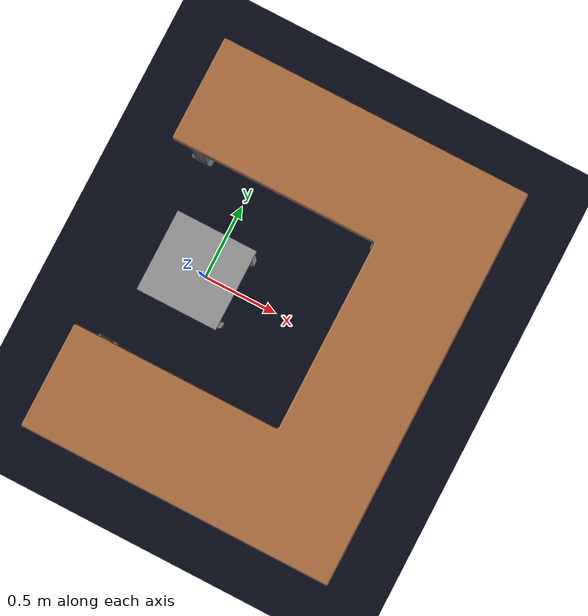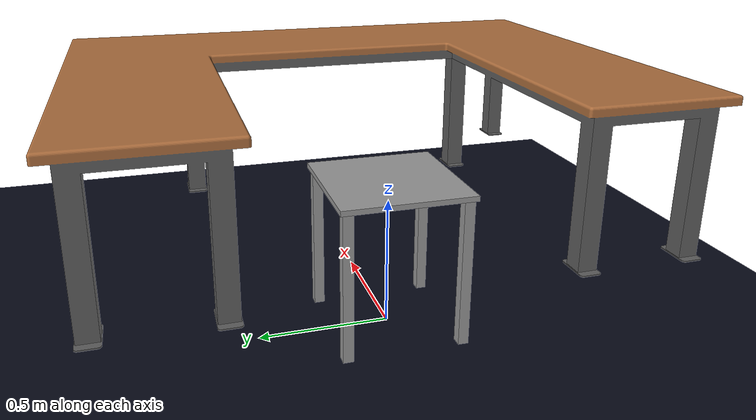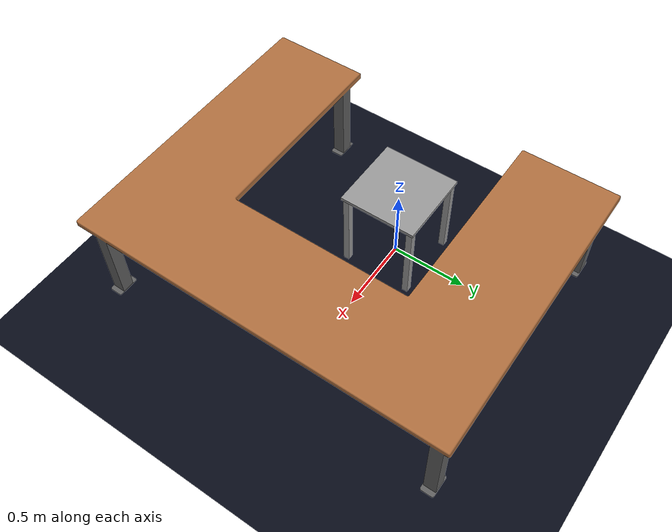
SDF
<sdf version='1.9'>
  <world name='default'>
    <physics name="1ms" type="ode">
      <max_step_size>0.003</max_step_size>
      <real_time_update_rate>1000.0</real_time_update_rate>
      <real_time_factor>1.0</real_time_factor>
    </physics>
    <plugin name='gz::sim::systems::Physics' filename='gz-sim-physics-system'/>
    <plugin name='gz::sim::systems::UserCommands' filename='gz-sim-user-commands-system'/>
    <plugin name='gz::sim::systems::SceneBroadcaster' filename='gz-sim-scene-broadcaster-system'/>
    <plugin name='gz::sim::systems::Contact' filename='gz-sim-contact-system'/>
    <gravity>0 0 -9.8</gravity>
    <magnetic_field>6e-06 2.3e-05 -4.2e-05</magnetic_field>
    <atmosphere type='adiabatic'/>
    <scene>
      <ambient>0.4 0.4 0.4 1</ambient>
      <background>0.7 0.7 0.7 1</background>
      <shadows>true</shadows>
    </scene>
    <audio>
      <device>default</device>
    </audio>
    <model name='ground_plane'>
      <static>true</static>
      <link name='link'>
        <collision name='collision'>
          <geometry>
            <plane>
              <normal>0 0 1</normal>
              <size>100 100</size>
            </plane>
          </geometry>
          <surface>
            <friction>
              <ode/>
            </friction>
            <bounce/>
            <contact/>
          </surface>
        </collision>
        <visual name='visual'>
          <geometry>
            <plane>
              <normal>0 0 1</normal>
              <size>100 100</size>
            </plane>
          </geometry>
          <material>
              <ambient>0.031 0.043 0.1 1</ambient>
              <diffuse>0.031 0.043 0.1 1</diffuse>
              <specular>0.031 0.043 0.1 1</specular>
          </material>
        </visual>
        <pose>0 0 0 0 -0 0</pose>
        <inertial>
          <pose>0 0 0 0 -0 0</pose>
          <mass>1</mass>
          <inertia>
            <ixx>1</ixx>
            <ixy>0</ixy>
            <ixz>0</ixz>
            <iyy>1</iyy>
            <iyz>0</iyz>
            <izz>1</izz>
          </inertia>
        </inertial>
        <enable_wind>false</enable_wind>
      </link>
      <pose>0 0 0 0 -0 0</pose>
      <self_collide>false</self_collide>
    </model>

    <model name='mesa_base'>
      <include>
            <uri>model://ur5_base</uri>
      </include>
      <pose>-0.0 -0.0 -0.000817 0 -0 0</pose>
      <static>true</static>
    </model>

    <model name='mesa_bidones'>
      <include>
            <uri>model://surgery_table</uri>
      </include>
      <pose>0.5 0.0 0.289901 0 -0 0</pose>
    </model>

    <light name='sun' type='directional'>
      <pose>0 0 10 0 -0 0</pose>
      <cast_shadows>true</cast_shadows>
      <intensity>1.5</intensity>
      <direction>-0.5 0.5 -1</direction>
      <diffuse>0.8 0.8 0.8 1</diffuse>
      <specular>0.2 0.2 0.2 1</specular>
      <attenuation>
        <range>1000</range>
        <linear>0.01</linear>
        <constant>0.90000000000000002</constant>
        <quadratic>0.001</quadratic>
      </attenuation>
      <spot>
        <inner_angle>0</inner_angle>
        <outer_angle>0</outer_angle>
        <falloff>0</falloff>
      </spot>
    </light>
  </world>
</sdf>

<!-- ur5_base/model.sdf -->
<sdf version="1.6">
  <model name="ur5_base">
    <static>true</static>

    <link name="top_plate">
      <pose>0 0 0.58 0 0 0</pose>
      <collision name="top_plate_collision">
        <geometry>
          <box>
            <size>0.5 0.5 0.02</size>
          </box>
        </geometry>
        <surface>
          <contact>
            <collide_bitmask>0x01</collide_bitmask>
          </contact>
        </surface>
      </collision>
      <visual name="top_plate_visual">
        <geometry>
          <box>
            <size>0.5 0.5 0.02</size>
          </box>
        </geometry>
        <material>
          <script>
            <uri>file://media/materials/scripts/gazebo.material</uri>
            <name>Gazebo/Grey</name>
          </script>
        </material>
      </visual>
    </link>
    <link name="leg1">
      <pose>0.22 0.22 0.285 0 0 0</pose>
      <collision name="leg1_collision">
        <geometry>
          <box>
            <size>0.04 0.04 0.57</size>
          </box>
        </geometry>
      </collision>
      <visual name="leg1_visual">
        <geometry>
          <box>
            <size>0.04 0.04 0.57</size>
          </box>
        </geometry>
        <material>
          <script>
            <uri>file://media/materials/scripts/gazebo.material</uri>
            <name>Gazebo/Grey</name>
          </script>
        </material>
      </visual>
    </link>
    <link name="leg2">
      <pose>-0.22 0.22 0.285 0 0 0</pose>
      <collision name="leg2_collision">
        <geometry>
          <box>
            <size>0.04 0.04 0.57</size>
          </box>
        </geometry>
      </collision>
      <visual name="leg2_visual">
        <geometry>
          <box>
            <size>0.04 0.04 0.57</size>
          </box>
        </geometry>
        <material>
          <script>
            <uri>file://media/materials/scripts/gazebo.material</uri>
            <name>Gazebo/Grey</name>
          </script>
        </material>
      </visual>
    </link>
    <link name="leg3">
      <pose>0.22 -0.22 0.285 0 0 0</pose>
      <collision name="leg3_collision">
        <geometry>
          <box>
            <size>0.04 0.04 0.57</size>
          </box>
        </geometry>
      </collision>
      <visual name="leg3_visual">
        <geometry>
          <box>
            <size>0.04 0.04 0.57</size>
          </box>
        </geometry>
        <material>
          <script>
            <uri>file://media/materials/scripts/gazebo.material</uri>
            <name>Gazebo/Grey</name>
          </script>
        </material>
      </visual>
    </link>
    <link name="leg4">
      <pose>-0.22 -0.22 0.285 0 0 0</pose>
      <collision name="leg4_collision">
        <geometry>
          <box>
            <size>0.04 0.04 0.57</size>
          </box>
        </geometry>
      </collision>
      <visual name="leg4_visual">
        <geometry>
          <box>
            <size>0.04 0.04 0.57</size>
          </box>
        </geometry>
        <material>
          <script>
            <uri>file://media/materials/scripts/gazebo.material</uri>
            <name>Gazebo/Grey</name>
          </script>
        </material>
      </visual>
    </link>
  </model>
</sdf>

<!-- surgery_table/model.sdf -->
<sdf version="1.5">
  <model name="surgery_table">
    <static>true</static>
    <link name="link">
      <inertial>
        <mass>2</mass>
        <pose frame=''>0 0 0 0 0 0</pose>
        <inertia>
          <ixx>0.1</ixx>
          <ixy>0</ixy>
          <ixz>0</ixz>
          <iyy>0.1</iyy>
          <iyz>0</iyz>
          <izz>0.1</izz>
        </inertia>
      </inertial>

      <collision name="collision">
        <geometry>
         <mesh>
		  <scale>0.01 0.01 0.01</scale>
          <uri>model://surgery_table/meshes/surgery_table.dae</uri>
         </mesh>
        </geometry>
        <surface>
          <friction>
            <ode>
              <mu>100</mu>
              <mu2>50</mu2>
            </ode>
          </friction>
        </surface>
      </collision>
      <visual name="visual">
        <cast_shadows>false</cast_shadows>
        <geometry>
		 <mesh>
		  <scale>0.01 0.01 0.01</scale>
          <uri>model://surgery_table/meshes/surgery_table.dae</uri>
         </mesh>
        </geometry>
      </visual>
    </link>
  </model>
</sdf>
